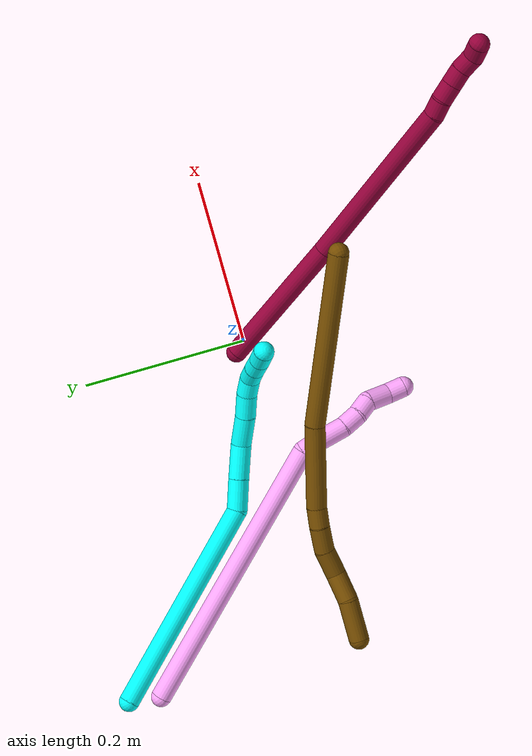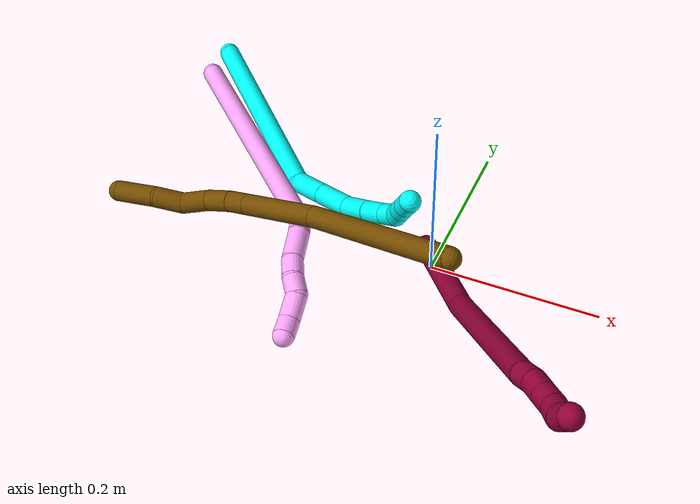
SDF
<sdf version="1.7">
 <world name="default">
  <model name="photoneo_s_sensor">
   <static>1</static>
   <pose>0 0 2 1.57079 1.57079 3.14159</pose>
   <link name="link">
    <inertial><mass>0.1</mass></inertial>
    <sensor name="sensor" type="depth">
     <update_rate>30</update_rate>
     <camera>
      <horizontal_fov>1.22</horizontal_fov>
      <image><width>1920</width><height>1200</height><format>B8G8R8</format></image>
      <clip><near>0.1</near><far>4</far></clip>
      <depth_camera><output>points</output></depth_camera>
     </camera>
     <plugin name="camera_plugin" filename="libgazebo_ros_depth_camera.so">
      <baseline>0.2</baseline>
      <alwaysOn>1</alwaysOn>
      <updateRate>0.0</updateRate>
      <cameraName>camera_ir</cameraName>
      <imageTopicName>/camera/color/image_raw</imageTopicName>
      <cameraInfoTopicName>/camera/color/camera_info</cameraInfoTopicName>
      <depthImageTopicName>/camera/depth/image_raw</depthImageTopicName>
      <depthImageCameraInfoTopicName>/camera/depth/camera_info</depthImageCameraInfoTopicName>
      <pointCloudTopicName>/camera/depth/points</pointCloudTopicName>
      <frameName>fr_optical</frameName>
      <pointCloudCutoff>0.1</pointCloudCutoff>
      <pointCloudCutoffMax>2.0</pointCloudCutoffMax>
      <distortionK1>0</distortionK1>
      <distortionK2>0</distortionK2>
      <distortionK3>0</distortionK3>
      <distortionT1>0</distortionT1>
      <distortionT2>0</distortionT2>
      <CxPrime>0</CxPrime>
      <Cx>0</Cx>
      <Cy>0</Cy>
      <focalLength>0</focalLength>
      <hackBaseline>0</hackBaseline>
     </plugin>
    </sensor>
   </link>
  </model>
  <model name="bin">
   <static>1</static>
   <link name="bottom">
    <collision name="collision-bottom">
     <pose>0 0 -0.01 0 -0 0</pose>
     <geometry><box><size>0.8 0.6 0.02</size></box></geometry>
     <surface>
      <friction><ode><mu>100</mu><mu2>100</mu2></ode></friction>
      <contact><collide_bitmask>65535</collide_bitmask></contact>
     </surface>
    </collision>
   </link>
   <link name="west_wall">
    <collision name="collision-west_wall">
     <pose>-0.41 0 0.1 0 -0 0</pose>
     <geometry><box><size>0.02 0.6 0.2</size></box></geometry>
     <surface>
      <friction><ode><mu>100</mu><mu2>100</mu2></ode></friction>
      <contact><collide_bitmask>65535</collide_bitmask></contact>
     </surface>
    </collision>
   </link>
   <link name="east_wall">
    <collision name="collision-east_wall">
     <pose>0.41 0 0.1 0 -0 0</pose>
     <geometry><box><size>0.02 0.6 0.2</size></box></geometry>
     <surface>
      <friction><ode><mu>100</mu><mu2>100</mu2></ode></friction>
      <contact><collide_bitmask>65535</collide_bitmask></contact>
     </surface>
    </collision>
   </link>
   <link name="south_wall">
    <collision name="collision-south_wall">
     <pose>0 -0.31 0.1 0 -0 0</pose>
     <geometry><box><size>0.8 0.02 0.2</size></box></geometry>
     <surface>
      <friction><ode><mu>100</mu><mu2>100</mu2></ode></friction>
      <contact><collide_bitmask>65535</collide_bitmask></contact>
     </surface>
    </collision>
   </link>
   <link name="north_wall">
    <collision name="collision-north_wall">
     <pose>0 0.31 0.1 0 -0 0</pose>
     <geometry><box><size>0.8 0.02 0.2</size></box></geometry>
     <surface>
      <friction><ode><mu>100</mu><mu2>100</mu2></ode></friction>
      <contact><collide_bitmask>65535</collide_bitmask></contact>
     </surface>
    </collision>
   </link>
  </model>
  <model name="3">
   <static>0</static>
   <link name="3">
    <collision name="collision-cylinder-e_1_1_4">
     <pose>0.104567 -0.066204 -0.048378 2.20186 0.905792 1.52823</pose>
     <geometry><cylinder><radius>0.0125</radius><length>0.265764</length></cylinder></geometry>
     <surface>
      <friction><ode><mu>1.16</mu><mu2>1.16</mu2><slip1>0</slip1><slip2>0</slip2></ode></friction>
      <contact><ode><kp>1e+06</kp><kd>1</kd><max_vel>0</max_vel><min_depth>0.001</min_depth></ode></contact>
     </surface>
    </collision>
    <visual name="visual-cylinder-e_1_1_4">
     <pose>0.104567 -0.066204 -0.048378 2.20186 0.905792 1.52823</pose>
     <geometry><cylinder><radius>0.0125</radius><length>0.265764</length></cylinder></geometry>
     <material><ambient>0.003922 1 0.996078 1</ambient></material>
    </visual>
    <collision name="collision-cylinder-e_2_4_5">
     <pose>0.21804 -0.148694 -0.102629 1.91687 0.475158 0.663943</pose>
     <geometry><cylinder><radius>0.0125</radius><length>0.038938</length></cylinder></geometry>
     <surface>
      <friction><ode><mu>1.16</mu><mu2>1.16</mu2><slip1>0</slip1><slip2>0</slip2></ode></friction>
      <contact><ode><kp>1e+06</kp><kd>1</kd><max_vel>0</max_vel><min_depth>0.001</min_depth></ode></contact>
     </surface>
    </collision>
    <visual name="visual-cylinder-e_2_4_5">
     <pose>0.21804 -0.148694 -0.102629 1.91687 0.475158 0.663943</pose>
     <geometry><cylinder><radius>0.0125</radius><length>0.038938</length></cylinder></geometry>
     <material><ambient>0.003922 1 0.996078 1</ambient></material>
    </visual>
    <collision name="collision-cylinder-e_3_5_6">
     <pose>0.236718 -0.182719 -0.115673 1.95501 0.472171 0.68536</pose>
     <geometry><cylinder><radius>0.0125</radius><length>0.04297</length></cylinder></geometry>
     <surface>
      <friction><ode><mu>1.16</mu><mu2>1.16</mu2><slip1>0</slip1><slip2>0</slip2></ode></friction>
      <contact><ode><kp>1e+06</kp><kd>1</kd><max_vel>0</max_vel><min_depth>0.001</min_depth></ode></contact>
     </surface>
    </collision>
    <visual name="visual-cylinder-e_3_5_6">
     <pose>0.236718 -0.182719 -0.115673 1.95501 0.472171 0.68536</pose>
     <geometry><cylinder><radius>0.0125</radius><length>0.04297</length></cylinder></geometry>
     <material><ambient>0.003922 1 0.996078 1</ambient></material>
    </visual>
    <collision name="collision-cylinder-e_4_6_7">
     <pose>0.252327 -0.214367 -0.13483 2.28201 0.307791 0.652651</pose>
     <geometry><cylinder><radius>0.0125</radius><length>0.038532</length></cylinder></geometry>
     <surface>
      <friction><ode><mu>1.16</mu><mu2>1.16</mu2><slip1>0</slip1><slip2>0</slip2></ode></friction>
      <contact><ode><kp>1e+06</kp><kd>1</kd><max_vel>0</max_vel><min_depth>0.001</min_depth></ode></contact>
     </surface>
    </collision>
    <visual name="visual-cylinder-e_4_6_7">
     <pose>0.252327 -0.214367 -0.13483 2.28201 0.307791 0.652651</pose>
     <geometry><cylinder><radius>0.0125</radius><length>0.038532</length></cylinder></geometry>
     <material><ambient>0.003922 1 0.996078 1</ambient></material>
    </visual>
    <collision name="collision-cylinder-e_5_7_8">
     <pose>0.262062 -0.239676 -0.155153 2.20235 0.269301 0.521715</pose>
     <geometry><cylinder><radius>0.0125</radius><length>0.029303</length></cylinder></geometry>
     <surface>
      <friction><ode><mu>1.16</mu><mu2>1.16</mu2><slip1>0</slip1><slip2>0</slip2></ode></friction>
      <contact><ode><kp>1e+06</kp><kd>1</kd><max_vel>0</max_vel><min_depth>0.001</min_depth></ode></contact>
     </surface>
    </collision>
    <visual name="visual-cylinder-e_5_7_8">
     <pose>0.262062 -0.239676 -0.155153 2.20235 0.269301 0.521715</pose>
     <geometry><cylinder><radius>0.0125</radius><length>0.029303</length></cylinder></geometry>
     <material><ambient>0.003922 1 0.996078 1</ambient></material>
    </visual>
    <collision name="collision-cylinder-e_6_8_9">
     <pose>0.268983 -0.258554 -0.171486 2.38949 0.269456 0.661391</pose>
     <geometry><cylinder><radius>0.0125</radius><length>0.022715</length></cylinder></geometry>
     <surface>
      <friction><ode><mu>1.16</mu><mu2>1.16</mu2><slip1>0</slip1><slip2>0</slip2></ode></friction>
      <contact><ode><kp>1e+06</kp><kd>1</kd><max_vel>0</max_vel><min_depth>0.001</min_depth></ode></contact>
     </surface>
    </collision>
    <visual name="visual-cylinder-e_6_8_9">
     <pose>0.268983 -0.258554 -0.171486 2.38949 0.269456 0.661391</pose>
     <geometry><cylinder><radius>0.0125</radius><length>0.022715</length></cylinder></geometry>
     <material><ambient>0.003922 1 0.996078 1</ambient></material>
    </visual>
    <collision name="collision-cylinder-e_7_9_10">
     <pose>0.272116 -0.269798 -0.189516 2.78263 0.010213 0.056276</pose>
     <geometry><cylinder><radius>0.0125</radius><length>0.021438</length></cylinder></geometry>
     <surface>
      <friction><ode><mu>1.16</mu><mu2>1.16</mu2><slip1>0</slip1><slip2>0</slip2></ode></friction>
      <contact><ode><kp>1e+06</kp><kd>1</kd><max_vel>0</max_vel><min_depth>0.001</min_depth></ode></contact>
     </surface>
    </collision>
    <visual name="visual-cylinder-e_7_9_10">
     <pose>0.272116 -0.269798 -0.189516 2.78263 0.010213 0.056276</pose>
     <geometry><cylinder><radius>0.0125</radius><length>0.021438</length></cylinder></geometry>
     <material><ambient>0.003922 1 0.996078 1</ambient></material>
    </visual>
    <collision name="collision-cylinder-e_8_10_11">
     <pose>0.272663 -0.276886 -0.209085 2.80631 0.04332 0.254633</pose>
     <geometry><cylinder><radius>0.0125</radius><length>0.02021</length></cylinder></geometry>
     <surface>
      <friction><ode><mu>1.16</mu><mu2>1.16</mu2><slip1>0</slip1><slip2>0</slip2></ode></friction>
      <contact><ode><kp>1e+06</kp><kd>1</kd><max_vel>0</max_vel><min_depth>0.001</min_depth></ode></contact>
     </surface>
    </collision>
    <visual name="visual-cylinder-e_8_10_11">
     <pose>0.272663 -0.276886 -0.209085 2.80631 0.04332 0.254633</pose>
     <geometry><cylinder><radius>0.0125</radius><length>0.02021</length></cylinder></geometry>
     <material><ambient>0.003922 1 0.996078 1</ambient></material>
    </visual>
    <collision name="collision-cylinder-e_9_11_2">
     <pose>0.273292 -0.283927 -0.227969 2.76302 0.01905 0.099359</pose>
     <geometry><cylinder><radius>0.0125</radius><length>0.020131</length></cylinder></geometry>
     <surface>
      <friction><ode><mu>1.16</mu><mu2>1.16</mu2><slip1>0</slip1><slip2>0</slip2></ode></friction>
      <contact><ode><kp>1e+06</kp><kd>1</kd><max_vel>0</max_vel><min_depth>0.001</min_depth></ode></contact>
     </surface>
    </collision>
    <visual name="visual-cylinder-e_9_11_2">
     <pose>0.273292 -0.283927 -0.227969 2.76302 0.01905 0.099359</pose>
     <geometry><cylinder><radius>0.0125</radius><length>0.020131</length></cylinder></geometry>
     <material><ambient>0.003922 1 0.996078 1</ambient></material>
    </visual>
    <collision name="collision-sphere-2">
     <pose>0.273484 -0.287646 -0.23732 0 -0 0</pose>
     <geometry><sphere><radius>0.0125</radius></sphere></geometry>
     <surface>
      <friction><ode><mu>1.16</mu><mu2>1.16</mu2><slip1>0</slip1><slip2>0</slip2></ode></friction>
      <contact><ode><kp>1e+06</kp><kd>1</kd><max_vel>0</max_vel><min_depth>0.001</min_depth></ode></contact>
     </surface>
    </collision>
    <visual name="visual-sphere-2">
     <pose>0.273484 -0.287646 -0.23732 0 -0 0</pose>
     <geometry><sphere><radius>0.0125</radius></sphere></geometry>
     <material><ambient>0.003922 1 0.996078 1</ambient></material>
    </visual>
    <collision name="collision-sphere-11">
     <pose>0.273101 -0.280207 -0.218618 0 -0 0</pose>
     <geometry><sphere><radius>0.0125</radius></sphere></geometry>
     <surface>
      <friction><ode><mu>1.16</mu><mu2>1.16</mu2><slip1>0</slip1><slip2>0</slip2></ode></friction>
      <contact><ode><kp>1e+06</kp><kd>1</kd><max_vel>0</max_vel><min_depth>0.001</min_depth></ode></contact>
     </surface>
    </collision>
    <visual name="visual-sphere-11">
     <pose>0.273101 -0.280207 -0.218618 0 -0 0</pose>
     <geometry><sphere><radius>0.0125</radius></sphere></geometry>
     <material><ambient>0.003922 1 0.996078 1</ambient></material>
    </visual>
    <collision name="collision-sphere-10">
     <pose>0.272225 -0.273564 -0.199552 0 -0 0</pose>
     <geometry><sphere><radius>0.0125</radius></sphere></geometry>
     <surface>
      <friction><ode><mu>1.16</mu><mu2>1.16</mu2><slip1>0</slip1><slip2>0</slip2></ode></friction>
      <contact><ode><kp>1e+06</kp><kd>1</kd><max_vel>0</max_vel><min_depth>0.001</min_depth></ode></contact>
     </surface>
    </collision>
    <visual name="visual-sphere-10">
     <pose>0.272225 -0.273564 -0.199552 0 -0 0</pose>
     <geometry><sphere><radius>0.0125</radius></sphere></geometry>
     <material><ambient>0.003922 1 0.996078 1</ambient></material>
    </visual>
    <collision name="collision-sphere-9">
     <pose>0.272007 -0.266033 -0.179481 0 -0 0</pose>
     <geometry><sphere><radius>0.0125</radius></sphere></geometry>
     <surface>
      <friction><ode><mu>1.16</mu><mu2>1.16</mu2><slip1>0</slip1><slip2>0</slip2></ode></friction>
      <contact><ode><kp>1e+06</kp><kd>1</kd><max_vel>0</max_vel><min_depth>0.001</min_depth></ode></contact>
     </surface>
    </collision>
    <visual name="visual-sphere-9">
     <pose>0.272007 -0.266033 -0.179481 0 -0 0</pose>
     <geometry><sphere><radius>0.0125</radius></sphere></geometry>
     <material><ambient>0.003922 1 0.996078 1</ambient></material>
    </visual>
    <collision name="collision-sphere-4">
     <pose>0.209133 -0.132408 -0.096756 0 -0 0</pose>
     <geometry><sphere><radius>0.0125</radius></sphere></geometry>
     <surface>
      <friction><ode><mu>1.16</mu><mu2>1.16</mu2><slip1>0</slip1><slip2>0</slip2></ode></friction>
      <contact><ode><kp>1e+06</kp><kd>1</kd><max_vel>0</max_vel><min_depth>0.001</min_depth></ode></contact>
     </surface>
    </collision>
    <visual name="visual-sphere-4">
     <pose>0.209133 -0.132408 -0.096756 0 -0 0</pose>
     <geometry><sphere><radius>0.0125</radius></sphere></geometry>
     <material><ambient>0.003922 1 0.996078 1</ambient></material>
    </visual>
    <collision name="collision-sphere-1">
     <geometry><sphere><radius>0.0125</radius></sphere></geometry>
     <surface>
      <friction><ode><mu>1.16</mu><mu2>1.16</mu2><slip1>0</slip1><slip2>0</slip2></ode></friction>
      <contact><ode><kp>1e+06</kp><kd>1</kd><max_vel>0</max_vel><min_depth>0.001</min_depth></ode></contact>
     </surface>
    </collision>
    <visual name="visual-sphere-1">
     <geometry><sphere><radius>0.0125</radius></sphere></geometry>
     <material><ambient>0.003922 1 0.996078 1</ambient></material>
    </visual>
    <collision name="collision-sphere-8">
     <pose>0.26596 -0.251075 -0.163492 0 -0 0</pose>
     <geometry><sphere><radius>0.0125</radius></sphere></geometry>
     <surface>
      <friction><ode><mu>1.16</mu><mu2>1.16</mu2><slip1>0</slip1><slip2>0</slip2></ode></friction>
      <contact><ode><kp>1e+06</kp><kd>1</kd><max_vel>0</max_vel><min_depth>0.001</min_depth></ode></contact>
     </surface>
    </collision>
    <visual name="visual-sphere-8">
     <pose>0.26596 -0.251075 -0.163492 0 -0 0</pose>
     <geometry><sphere><radius>0.0125</radius></sphere></geometry>
     <material><ambient>0.003922 1 0.996078 1</ambient></material>
    </visual>
    <collision name="collision-sphere-5">
     <pose>0.226947 -0.16498 -0.108501 0 -0 0</pose>
     <geometry><sphere><radius>0.0125</radius></sphere></geometry>
     <surface>
      <friction><ode><mu>1.16</mu><mu2>1.16</mu2><slip1>0</slip1><slip2>0</slip2></ode></friction>
      <contact><ode><kp>1e+06</kp><kd>1</kd><max_vel>0</max_vel><min_depth>0.001</min_depth></ode></contact>
     </surface>
    </collision>
    <visual name="visual-sphere-5">
     <pose>0.226947 -0.16498 -0.108501 0 -0 0</pose>
     <geometry><sphere><radius>0.0125</radius></sphere></geometry>
     <material><ambient>0.003922 1 0.996078 1</ambient></material>
    </visual>
    <collision name="collision-sphere-6">
     <pose>0.24649 -0.200458 -0.122845 0 -0 0</pose>
     <geometry><sphere><radius>0.0125</radius></sphere></geometry>
     <surface>
      <friction><ode><mu>1.16</mu><mu2>1.16</mu2><slip1>0</slip1><slip2>0</slip2></ode></friction>
      <contact><ode><kp>1e+06</kp><kd>1</kd><max_vel>0</max_vel><min_depth>0.001</min_depth></ode></contact>
     </surface>
    </collision>
    <visual name="visual-sphere-6">
     <pose>0.24649 -0.200458 -0.122845 0 -0 0</pose>
     <geometry><sphere><radius>0.0125</radius></sphere></geometry>
     <material><ambient>0.003922 1 0.996078 1</ambient></material>
    </visual>
    <collision name="collision-sphere-7">
     <pose>0.258163 -0.228276 -0.146815 0 -0 0</pose>
     <geometry><sphere><radius>0.0125</radius></sphere></geometry>
     <surface>
      <friction><ode><mu>1.16</mu><mu2>1.16</mu2><slip1>0</slip1><slip2>0</slip2></ode></friction>
      <contact><ode><kp>1e+06</kp><kd>1</kd><max_vel>0</max_vel><min_depth>0.001</min_depth></ode></contact>
     </surface>
    </collision>
    <visual name="visual-sphere-7">
     <pose>0.258163 -0.228276 -0.146815 0 -0 0</pose>
     <geometry><sphere><radius>0.0125</radius></sphere></geometry>
     <material><ambient>0.003922 1 0.996078 1</ambient></material>
    </visual>
    <inertial>
     <pose>0.173618 -0.138975 -0.096677 0 -0 0</pose>
     <mass>0.5</mass>
     <inertia>
      <ixx>0.001072</ixx>
      <ixy>0</ixy>
      <ixz>0</ixz>
      <iyy>0.001914</iyy>
      <iyz>0</iyz>
      <izz>-0.000461</izz>
     </inertia>
    </inertial>
   </link>
   <pose>-0.38265 0.253154 0.020432 -3.06373 0.510619 -1.27955</pose>
  </model>
  <model name="4">
   <static>0</static>
   <link name="4">
    <collision name="collision-cylinder-e_1_1_4">
     <pose>-0.045595 -0.095948 -0.136891 2.53026 -0.266271 -0.80275</pose>
     <geometry><cylinder><radius>0.0125</radius><length>0.346548</length></cylinder></geometry>
     <surface>
      <friction><ode><mu>1.16</mu><mu2>1.16</mu2><slip1>0</slip1><slip2>0</slip2></ode></friction>
      <contact><ode><kp>1e+06</kp><kd>1</kd><max_vel>0</max_vel><min_depth>0.001</min_depth></ode></contact>
     </surface>
    </collision>
    <visual name="visual-cylinder-e_1_1_4">
     <pose>-0.045595 -0.095948 -0.136891 2.53026 -0.266271 -0.80275</pose>
     <geometry><cylinder><radius>0.0125</radius><length>0.346548</length></cylinder></geometry>
     <material><ambient>1 0.65098 0.996078 1</ambient></material>
    </visual>
    <collision name="collision-cylinder-e_2_4_5">
     <pose>-0.089409 -0.196949 -0.282239 2.6031 0.178798 0.628167</pose>
     <geometry><cylinder><radius>0.0125</radius><length>0.020023</length></cylinder></geometry>
     <surface>
      <friction><ode><mu>1.16</mu><mu2>1.16</mu2><slip1>0</slip1><slip2>0</slip2></ode></friction>
      <contact><ode><kp>1e+06</kp><kd>1</kd><max_vel>0</max_vel><min_depth>0.001</min_depth></ode></contact>
     </surface>
    </collision>
    <visual name="visual-cylinder-e_2_4_5">
     <pose>-0.089409 -0.196949 -0.282239 2.6031 0.178798 0.628167</pose>
     <geometry><cylinder><radius>0.0125</radius><length>0.020023</length></cylinder></geometry>
     <material><ambient>1 0.65098 0.996078 1</ambient></material>
    </visual>
    <collision name="collision-cylinder-e_3_5_6">
     <pose>-0.081694 -0.213809 -0.304206 2.42333 0.319396 0.810584</pose>
     <geometry><cylinder><radius>0.0125</radius><length>0.037796</length></cylinder></geometry>
     <surface>
      <friction><ode><mu>1.16</mu><mu2>1.16</mu2><slip1>0</slip1><slip2>0</slip2></ode></friction>
      <contact><ode><kp>1e+06</kp><kd>1</kd><max_vel>0</max_vel><min_depth>0.001</min_depth></ode></contact>
     </surface>
    </collision>
    <visual name="visual-cylinder-e_3_5_6">
     <pose>-0.081694 -0.213809 -0.304206 2.42333 0.319396 0.810584</pose>
     <geometry><cylinder><radius>0.0125</radius><length>0.037796</length></cylinder></geometry>
     <material><ambient>1 0.65098 0.996078 1</ambient></material>
    </visual>
    <collision name="collision-cylinder-e_4_6_7">
     <pose>-0.074217 -0.233796 -0.325353 2.32194 0.137072 0.313429</pose>
     <geometry><cylinder><radius>0.0125</radius><length>0.022593</length></cylinder></geometry>
     <surface>
      <friction><ode><mu>1.16</mu><mu2>1.16</mu2><slip1>0</slip1><slip2>0</slip2></ode></friction>
      <contact><ode><kp>1e+06</kp><kd>1</kd><max_vel>0</max_vel><min_depth>0.001</min_depth></ode></contact>
     </surface>
    </collision>
    <visual name="visual-cylinder-e_4_6_7">
     <pose>-0.074217 -0.233796 -0.325353 2.32194 0.137072 0.313429</pose>
     <geometry><cylinder><radius>0.0125</radius><length>0.022593</length></cylinder></geometry>
     <material><ambient>1 0.65098 0.996078 1</ambient></material>
    </visual>
    <collision name="collision-cylinder-e_5_7_8">
     <pose>-0.072689 -0.251372 -0.338393 2.0926 -0.001483 -0.002563</pose>
     <geometry><cylinder><radius>0.0125</radius><length>0.021678</length></cylinder></geometry>
     <surface>
      <friction><ode><mu>1.16</mu><mu2>1.16</mu2><slip1>0</slip1><slip2>0</slip2></ode></friction>
      <contact><ode><kp>1e+06</kp><kd>1</kd><max_vel>0</max_vel><min_depth>0.001</min_depth></ode></contact>
     </surface>
    </collision>
    <visual name="visual-cylinder-e_5_7_8">
     <pose>-0.072689 -0.251372 -0.338393 2.0926 -0.001483 -0.002563</pose>
     <geometry><cylinder><radius>0.0125</radius><length>0.021678</length></cylinder></geometry>
     <material><ambient>1 0.65098 0.996078 1</ambient></material>
    </visual>
    <collision name="collision-cylinder-e_6_8_9">
     <pose>-0.065455 -0.2722 -0.34994 2.06394 0.509429 0.821499</pose>
     <geometry><cylinder><radius>0.0125</radius><length>0.029732</length></cylinder></geometry>
     <surface>
      <friction><ode><mu>1.16</mu><mu2>1.16</mu2><slip1>0</slip1><slip2>0</slip2></ode></friction>
      <contact><ode><kp>1e+06</kp><kd>1</kd><max_vel>0</max_vel><min_depth>0.001</min_depth></ode></contact>
     </surface>
    </collision>
    <visual name="visual-cylinder-e_6_8_9">
     <pose>-0.065455 -0.2722 -0.34994 2.06394 0.509429 0.821499</pose>
     <geometry><cylinder><radius>0.0125</radius><length>0.029732</length></cylinder></geometry>
     <material><ambient>1 0.65098 0.996078 1</ambient></material>
    </visual>
    <collision name="collision-cylinder-e_7_9_2">
     <pose>-0.053908 -0.289976 -0.363715 2.44801 0.408675 1.04128</pose>
     <geometry><cylinder><radius>0.0125</radius><length>0.021629</length></cylinder></geometry>
     <surface>
      <friction><ode><mu>1.16</mu><mu2>1.16</mu2><slip1>0</slip1><slip2>0</slip2></ode></friction>
      <contact><ode><kp>1e+06</kp><kd>1</kd><max_vel>0</max_vel><min_depth>0.001</min_depth></ode></contact>
     </surface>
    </collision>
    <visual name="visual-cylinder-e_7_9_2">
     <pose>-0.053908 -0.289976 -0.363715 2.44801 0.408675 1.04128</pose>
     <geometry><cylinder><radius>0.0125</radius><length>0.021629</length></cylinder></geometry>
     <material><ambient>1 0.65098 0.996078 1</ambient></material>
    </visual>
    <collision name="collision-sphere-2">
     <pose>-0.04961 -0.296321 -0.371346 0 -0 0</pose>
     <geometry><sphere><radius>0.0125</radius></sphere></geometry>
     <surface>
      <friction><ode><mu>1.16</mu><mu2>1.16</mu2><slip1>0</slip1><slip2>0</slip2></ode></friction>
      <contact><ode><kp>1e+06</kp><kd>1</kd><max_vel>0</max_vel><min_depth>0.001</min_depth></ode></contact>
     </surface>
    </collision>
    <visual name="visual-sphere-2">
     <pose>-0.04961 -0.296321 -0.371346 0 -0 0</pose>
     <geometry><sphere><radius>0.0125</radius></sphere></geometry>
     <material><ambient>1 0.65098 0.996078 1</ambient></material>
    </visual>
    <collision name="collision-sphere-9">
     <pose>-0.058206 -0.283632 -0.356084 0 -0 0</pose>
     <geometry><sphere><radius>0.0125</radius></sphere></geometry>
     <surface>
      <friction><ode><mu>1.16</mu><mu2>1.16</mu2><slip1>0</slip1><slip2>0</slip2></ode></friction>
      <contact><ode><kp>1e+06</kp><kd>1</kd><max_vel>0</max_vel><min_depth>0.001</min_depth></ode></contact>
     </surface>
    </collision>
    <visual name="visual-sphere-9">
     <pose>-0.058206 -0.283632 -0.356084 0 -0 0</pose>
     <geometry><sphere><radius>0.0125</radius></sphere></geometry>
     <material><ambient>1 0.65098 0.996078 1</ambient></material>
    </visual>
    <collision name="collision-sphere-4">
     <pose>-0.091189 -0.191896 -0.273781 0 -0 0</pose>
     <geometry><sphere><radius>0.0125</radius></sphere></geometry>
     <surface>
      <friction><ode><mu>1.16</mu><mu2>1.16</mu2><slip1>0</slip1><slip2>0</slip2></ode></friction>
      <contact><ode><kp>1e+06</kp><kd>1</kd><max_vel>0</max_vel><min_depth>0.001</min_depth></ode></contact>
     </surface>
    </collision>
    <visual name="visual-sphere-4">
     <pose>-0.091189 -0.191896 -0.273781 0 -0 0</pose>
     <geometry><sphere><radius>0.0125</radius></sphere></geometry>
     <material><ambient>1 0.65098 0.996078 1</ambient></material>
    </visual>
    <collision name="collision-sphere-1">
     <geometry><sphere><radius>0.0125</radius></sphere></geometry>
     <surface>
      <friction><ode><mu>1.16</mu><mu2>1.16</mu2><slip1>0</slip1><slip2>0</slip2></ode></friction>
      <contact><ode><kp>1e+06</kp><kd>1</kd><max_vel>0</max_vel><min_depth>0.001</min_depth></ode></contact>
     </surface>
    </collision>
    <visual name="visual-sphere-1">
     <geometry><sphere><radius>0.0125</radius></sphere></geometry>
     <material><ambient>1 0.65098 0.996078 1</ambient></material>
    </visual>
    <collision name="collision-sphere-8">
     <pose>-0.072705 -0.260768 -0.343796 0 -0 0</pose>
     <geometry><sphere><radius>0.0125</radius></sphere></geometry>
     <surface>
      <friction><ode><mu>1.16</mu><mu2>1.16</mu2><slip1>0</slip1><slip2>0</slip2></ode></friction>
      <contact><ode><kp>1e+06</kp><kd>1</kd><max_vel>0</max_vel><min_depth>0.001</min_depth></ode></contact>
     </surface>
    </collision>
    <visual name="visual-sphere-8">
     <pose>-0.072705 -0.260768 -0.343796 0 -0 0</pose>
     <geometry><sphere><radius>0.0125</radius></sphere></geometry>
     <material><ambient>1 0.65098 0.996078 1</ambient></material>
    </visual>
    <collision name="collision-sphere-5">
     <pose>-0.087628 -0.202001 -0.290697 0 -0 0</pose>
     <geometry><sphere><radius>0.0125</radius></sphere></geometry>
     <surface>
      <friction><ode><mu>1.16</mu><mu2>1.16</mu2><slip1>0</slip1><slip2>0</slip2></ode></friction>
      <contact><ode><kp>1e+06</kp><kd>1</kd><max_vel>0</max_vel><min_depth>0.001</min_depth></ode></contact>
     </surface>
    </collision>
    <visual name="visual-sphere-5">
     <pose>-0.087628 -0.202001 -0.290697 0 -0 0</pose>
     <geometry><sphere><radius>0.0125</radius></sphere></geometry>
     <material><ambient>1 0.65098 0.996078 1</ambient></material>
    </visual>
    <collision name="collision-sphere-6">
     <pose>-0.07576 -0.225616 -0.317716 0 -0 0</pose>
     <geometry><sphere><radius>0.0125</radius></sphere></geometry>
     <surface>
      <friction><ode><mu>1.16</mu><mu2>1.16</mu2><slip1>0</slip1><slip2>0</slip2></ode></friction>
      <contact><ode><kp>1e+06</kp><kd>1</kd><max_vel>0</max_vel><min_depth>0.001</min_depth></ode></contact>
     </surface>
    </collision>
    <visual name="visual-sphere-6">
     <pose>-0.07576 -0.225616 -0.317716 0 -0 0</pose>
     <geometry><sphere><radius>0.0125</radius></sphere></geometry>
     <material><ambient>1 0.65098 0.996078 1</ambient></material>
    </visual>
    <collision name="collision-sphere-7">
     <pose>-0.072673 -0.241975 -0.332991 0 -0 0</pose>
     <geometry><sphere><radius>0.0125</radius></sphere></geometry>
     <surface>
      <friction><ode><mu>1.16</mu><mu2>1.16</mu2><slip1>0</slip1><slip2>0</slip2></ode></friction>
      <contact><ode><kp>1e+06</kp><kd>1</kd><max_vel>0</max_vel><min_depth>0.001</min_depth></ode></contact>
     </surface>
    </collision>
    <visual name="visual-sphere-7">
     <pose>-0.072673 -0.241975 -0.332991 0 -0 0</pose>
     <geometry><sphere><radius>0.0125</radius></sphere></geometry>
     <material><ambient>1 0.65098 0.996078 1</ambient></material>
    </visual>
    <inertial>
     <pose>-0.054087 -0.140743 -0.195092 0 -0 0</pose>
     <mass>0.5</mass>
     <inertia>
      <ixx>-6.6e-05</ixx>
      <ixy>0</ixy>
      <ixz>0</ixz>
      <iyy>-0.004038</iyy>
      <iyz>0</iyz>
      <izz>0.002821</izz>
     </inertia>
    </inertial>
   </link>
   <pose>-0.388461 0.214713 0.011994 2.21616 0.26979 -2.61796</pose>
  </model>
  <model name="8">
   <static>0</static>
   <link name="8">
    <collision name="collision-cylinder-e_1_1_4">
     <pose>0.005324 -0.007627 0.085818 0.088642 0.061712 0.002738</pose>
     <geometry><cylinder><radius>0.0125</radius><length>0.172642</length></cylinder></geometry>
     <surface>
      <friction><ode><mu>1.16</mu><mu2>1.16</mu2><slip1>0</slip1><slip2>0</slip2></ode></friction>
      <contact><ode><kp>1e+06</kp><kd>1</kd><max_vel>0</max_vel><min_depth>0.001</min_depth></ode></contact>
     </surface>
    </collision>
    <visual name="visual-cylinder-e_1_1_4">
     <pose>0.005324 -0.007627 0.085818 0.088642 0.061712 0.002738</pose>
     <geometry><cylinder><radius>0.0125</radius><length>0.172642</length></cylinder></geometry>
     <material><ambient>0.584314 0 0.227451 1</ambient></material>
    </visual>
    <collision name="collision-cylinder-e_2_4_5">
     <pose>0.006032 -0.035073 0.282001 0.17768 -0.041139 -0.003665</pose>
     <geometry><cylinder><radius>0.0125</radius><length>0.224449</length></cylinder></geometry>
     <surface>
      <friction><ode><mu>1.16</mu><mu2>1.16</mu2><slip1>0</slip1><slip2>0</slip2></ode></friction>
      <contact><ode><kp>1e+06</kp><kd>1</kd><max_vel>0</max_vel><min_depth>0.001</min_depth></ode></contact>
     </surface>
    </collision>
    <visual name="visual-cylinder-e_2_4_5">
     <pose>0.006032 -0.035073 0.282001 0.17768 -0.041139 -0.003665</pose>
     <geometry><cylinder><radius>0.0125</radius><length>0.224449</length></cylinder></geometry>
     <material><ambient>0.584314 0 0.227451 1</ambient></material>
    </visual>
    <collision name="collision-cylinder-e_3_5_6">
     <pose>-0.000252 -0.054979 0.402571 0.008562 -0.162 -0.000695</pose>
     <geometry><cylinder><radius>0.0125</radius><length>0.020683</length></cylinder></geometry>
     <surface>
      <friction><ode><mu>1.16</mu><mu2>1.16</mu2><slip1>0</slip1><slip2>0</slip2></ode></friction>
      <contact><ode><kp>1e+06</kp><kd>1</kd><max_vel>0</max_vel><min_depth>0.001</min_depth></ode></contact>
     </surface>
    </collision>
    <visual name="visual-cylinder-e_3_5_6">
     <pose>-0.000252 -0.054979 0.402571 0.008562 -0.162 -0.000695</pose>
     <geometry><cylinder><radius>0.0125</radius><length>0.020683</length></cylinder></geometry>
     <material><ambient>0.584314 0 0.227451 1</ambient></material>
    </visual>
    <collision name="collision-cylinder-e_4_6_7">
     <pose>-0.001661 -0.054192 0.423409 -0.082062 0.024268 -0.000996</pose>
     <geometry><cylinder><radius>0.0125</radius><length>0.021343</length></cylinder></geometry>
     <surface>
      <friction><ode><mu>1.16</mu><mu2>1.16</mu2><slip1>0</slip1><slip2>0</slip2></ode></friction>
      <contact><ode><kp>1e+06</kp><kd>1</kd><max_vel>0</max_vel><min_depth>0.001</min_depth></ode></contact>
     </surface>
    </collision>
    <visual name="visual-cylinder-e_4_6_7">
     <pose>-0.001661 -0.054192 0.423409 -0.082062 0.024268 -0.000996</pose>
     <geometry><cylinder><radius>0.0125</radius><length>0.021343</length></cylinder></geometry>
     <material><ambient>0.584314 0 0.227451 1</ambient></material>
    </visual>
    <collision name="collision-cylinder-e_5_7_8">
     <pose>-0.001357 -0.052754 0.444053 -0.056201 0.00447 -0.000126</pose>
     <geometry><cylinder><radius>0.0125</radius><length>0.020055</length></cylinder></geometry>
     <surface>
      <friction><ode><mu>1.16</mu><mu2>1.16</mu2><slip1>0</slip1><slip2>0</slip2></ode></friction>
      <contact><ode><kp>1e+06</kp><kd>1</kd><max_vel>0</max_vel><min_depth>0.001</min_depth></ode></contact>
     </surface>
    </collision>
    <visual name="visual-cylinder-e_5_7_8">
     <pose>-0.001357 -0.052754 0.444053 -0.056201 0.00447 -0.000126</pose>
     <geometry><cylinder><radius>0.0125</radius><length>0.020055</length></cylinder></geometry>
     <material><ambient>0.584314 0 0.227451 1</ambient></material>
    </visual>
    <collision name="collision-cylinder-e_6_8_9">
     <pose>-0.000387 -0.053602 0.464271 0.137443 0.089595 0.006171</pose>
     <geometry><cylinder><radius>0.0125</radius><length>0.02069</length></cylinder></geometry>
     <surface>
      <friction><ode><mu>1.16</mu><mu2>1.16</mu2><slip1>0</slip1><slip2>0</slip2></ode></friction>
      <contact><ode><kp>1e+06</kp><kd>1</kd><max_vel>0</max_vel><min_depth>0.001</min_depth></ode></contact>
     </surface>
    </collision>
    <visual name="visual-cylinder-e_6_8_9">
     <pose>-0.000387 -0.053602 0.464271 0.137443 0.089595 0.006171</pose>
     <geometry><cylinder><radius>0.0125</radius><length>0.02069</length></cylinder></geometry>
     <material><ambient>0.584314 0 0.227451 1</ambient></material>
    </visual>
    <collision name="collision-cylinder-e_7_9_2">
     <pose>-0.003276 -0.058004 0.483303 0.326654 -0.388538 -0.064824</pose>
     <geometry><cylinder><radius>0.0125</radius><length>0.020138</length></cylinder></geometry>
     <surface>
      <friction><ode><mu>1.16</mu><mu2>1.16</mu2><slip1>0</slip1><slip2>0</slip2></ode></friction>
      <contact><ode><kp>1e+06</kp><kd>1</kd><max_vel>0</max_vel><min_depth>0.001</min_depth></ode></contact>
     </surface>
    </collision>
    <visual name="visual-cylinder-e_7_9_2">
     <pose>-0.003276 -0.058004 0.483303 0.326654 -0.388538 -0.064824</pose>
     <geometry><cylinder><radius>0.0125</radius><length>0.020138</length></cylinder></geometry>
     <material><ambient>0.584314 0 0.227451 1</ambient></material>
    </visual>
    <collision name="collision-sphere-2">
     <pose>-0.00709 -0.060994 0.492129 0 -0 0</pose>
     <geometry><sphere><radius>0.0125</radius></sphere></geometry>
     <surface>
      <friction><ode><mu>1.16</mu><mu2>1.16</mu2><slip1>0</slip1><slip2>0</slip2></ode></friction>
      <contact><ode><kp>1e+06</kp><kd>1</kd><max_vel>0</max_vel><min_depth>0.001</min_depth></ode></contact>
     </surface>
    </collision>
    <visual name="visual-sphere-2">
     <pose>-0.00709 -0.060994 0.492129 0 -0 0</pose>
     <geometry><sphere><radius>0.0125</radius></sphere></geometry>
     <material><ambient>0.584314 0 0.227451 1</ambient></material>
    </visual>
    <collision name="collision-sphere-9">
     <pose>0.000539 -0.055014 0.474477 0 -0 0</pose>
     <geometry><sphere><radius>0.0125</radius></sphere></geometry>
     <surface>
      <friction><ode><mu>1.16</mu><mu2>1.16</mu2><slip1>0</slip1><slip2>0</slip2></ode></friction>
      <contact><ode><kp>1e+06</kp><kd>1</kd><max_vel>0</max_vel><min_depth>0.001</min_depth></ode></contact>
     </surface>
    </collision>
    <visual name="visual-sphere-9">
     <pose>0.000539 -0.055014 0.474477 0 -0 0</pose>
     <geometry><sphere><radius>0.0125</radius></sphere></geometry>
     <material><ambient>0.584314 0 0.227451 1</ambient></material>
    </visual>
    <collision name="collision-sphere-4">
     <pose>0.010647 -0.015254 0.171637 0 -0 0</pose>
     <geometry><sphere><radius>0.0125</radius></sphere></geometry>
     <surface>
      <friction><ode><mu>1.16</mu><mu2>1.16</mu2><slip1>0</slip1><slip2>0</slip2></ode></friction>
      <contact><ode><kp>1e+06</kp><kd>1</kd><max_vel>0</max_vel><min_depth>0.001</min_depth></ode></contact>
     </surface>
    </collision>
    <visual name="visual-sphere-4">
     <pose>0.010647 -0.015254 0.171637 0 -0 0</pose>
     <geometry><sphere><radius>0.0125</radius></sphere></geometry>
     <material><ambient>0.584314 0 0.227451 1</ambient></material>
    </visual>
    <collision name="collision-sphere-1">
     <geometry><sphere><radius>0.0125</radius></sphere></geometry>
     <surface>
      <friction><ode><mu>1.16</mu><mu2>1.16</mu2><slip1>0</slip1><slip2>0</slip2></ode></friction>
      <contact><ode><kp>1e+06</kp><kd>1</kd><max_vel>0</max_vel><min_depth>0.001</min_depth></ode></contact>
     </surface>
    </collision>
    <visual name="visual-sphere-1">
     <geometry><sphere><radius>0.0125</radius></sphere></geometry>
     <material><ambient>0.584314 0 0.227451 1</ambient></material>
    </visual>
    <collision name="collision-sphere-8">
     <pose>-0.001312 -0.052191 0.454064 0 -0 0</pose>
     <geometry><sphere><radius>0.0125</radius></sphere></geometry>
     <surface>
      <friction><ode><mu>1.16</mu><mu2>1.16</mu2><slip1>0</slip1><slip2>0</slip2></ode></friction>
      <contact><ode><kp>1e+06</kp><kd>1</kd><max_vel>0</max_vel><min_depth>0.001</min_depth></ode></contact>
     </surface>
    </collision>
    <visual name="visual-sphere-8">
     <pose>-0.001312 -0.052191 0.454064 0 -0 0</pose>
     <geometry><sphere><radius>0.0125</radius></sphere></geometry>
     <material><ambient>0.584314 0 0.227451 1</ambient></material>
    </visual>
    <collision name="collision-sphere-5">
     <pose>0.001416 -0.054891 0.392365 0 -0 0</pose>
     <geometry><sphere><radius>0.0125</radius></sphere></geometry>
     <surface>
      <friction><ode><mu>1.16</mu><mu2>1.16</mu2><slip1>0</slip1><slip2>0</slip2></ode></friction>
      <contact><ode><kp>1e+06</kp><kd>1</kd><max_vel>0</max_vel><min_depth>0.001</min_depth></ode></contact>
     </surface>
    </collision>
    <visual name="visual-sphere-5">
     <pose>0.001416 -0.054891 0.392365 0 -0 0</pose>
     <geometry><sphere><radius>0.0125</radius></sphere></geometry>
     <material><ambient>0.584314 0 0.227451 1</ambient></material>
    </visual>
    <collision name="collision-sphere-6">
     <pose>-0.00192 -0.055066 0.412777 0 -0 0</pose>
     <geometry><sphere><radius>0.0125</radius></sphere></geometry>
     <surface>
      <friction><ode><mu>1.16</mu><mu2>1.16</mu2><slip1>0</slip1><slip2>0</slip2></ode></friction>
      <contact><ode><kp>1e+06</kp><kd>1</kd><max_vel>0</max_vel><min_depth>0.001</min_depth></ode></contact>
     </surface>
    </collision>
    <visual name="visual-sphere-6">
     <pose>-0.00192 -0.055066 0.412777 0 -0 0</pose>
     <geometry><sphere><radius>0.0125</radius></sphere></geometry>
     <material><ambient>0.584314 0 0.227451 1</ambient></material>
    </visual>
    <collision name="collision-sphere-7">
     <pose>-0.001402 -0.053317 0.434041 0 -0 0</pose>
     <geometry><sphere><radius>0.0125</radius></sphere></geometry>
     <surface>
      <friction><ode><mu>1.16</mu><mu2>1.16</mu2><slip1>0</slip1><slip2>0</slip2></ode></friction>
      <contact><ode><kp>1e+06</kp><kd>1</kd><max_vel>0</max_vel><min_depth>0.001</min_depth></ode></contact>
     </surface>
    </collision>
    <visual name="visual-sphere-7">
     <pose>-0.001402 -0.053317 0.434041 0 -0 0</pose>
     <geometry><sphere><radius>0.0125</radius></sphere></geometry>
     <material><ambient>0.584314 0 0.227451 1</ambient></material>
    </visual>
    <inertial>
     <pose>0.004262 -0.029635 0.247436 0 -0 0</pose>
     <mass>0.5</mass>
     <inertia><ixx>0.00139</ixx><ixy>0</ixy><ixz>0</ixz><iyy>0.00137</iyy><iyz>0</iyz><izz>0.000258</izz></inertia>
    </inertial>
   </link>
   <pose>-0.010939 0.01203 0.019842 -1.11814 0.602408 -2.18356</pose>
  </model>
  <model name="12">
   <static>0</static>
   <link name="12">
    <collision name="collision-cylinder-e_1_1_4">
     <pose>-0.079616 0.036864 -0.064174 -2.62017 -0.821883 2.04286</pose>
     <geometry><cylinder><radius>0.0125</radius><length>0.217402</length></cylinder></geometry>
     <surface>
      <friction><ode><mu>1.16</mu><mu2>1.16</mu2><slip1>0</slip1><slip2>0</slip2></ode></friction>
      <contact><ode><kp>1e+06</kp><kd>1</kd><max_vel>0</max_vel><min_depth>0.001</min_depth></ode></contact>
     </surface>
    </collision>
    <visual name="visual-cylinder-e_1_1_4">
     <pose>-0.079616 0.036864 -0.064174 -2.62017 -0.821883 2.04286</pose>
     <geometry><cylinder><radius>0.0125</radius><length>0.217402</length></cylinder></geometry>
     <material><ambient>0.466667 0.301961 0 1</ambient></material>
    </visual>
    <collision name="collision-cylinder-e_2_4_5">
     <pose>-0.192258 0.094685 -0.163947 -2.60954 -0.67442 1.82024</pose>
     <geometry><cylinder><radius>0.0125</radius><length>0.105779</length></cylinder></geometry>
     <surface>
      <friction><ode><mu>1.16</mu><mu2>1.16</mu2><slip1>0</slip1><slip2>0</slip2></ode></friction>
      <contact><ode><kp>1e+06</kp><kd>1</kd><max_vel>0</max_vel><min_depth>0.001</min_depth></ode></contact>
     </surface>
    </collision>
    <visual name="visual-cylinder-e_2_4_5">
     <pose>-0.192258 0.094685 -0.163947 -2.60954 -0.67442 1.82024</pose>
     <geometry><cylinder><radius>0.0125</radius><length>0.105779</length></cylinder></geometry>
     <material><ambient>0.466667 0.301961 0 1</ambient></material>
    </visual>
    <collision name="collision-cylinder-e_3_5_6">
     <pose>-0.231587 0.12026 -0.209189 -2.69496 -0.532705 1.75323</pose>
     <geometry><cylinder><radius>0.0125</radius><length>0.02482</length></cylinder></geometry>
     <surface>
      <friction><ode><mu>1.16</mu><mu2>1.16</mu2><slip1>0</slip1><slip2>0</slip2></ode></friction>
      <contact><ode><kp>1e+06</kp><kd>1</kd><max_vel>0</max_vel><min_depth>0.001</min_depth></ode></contact>
     </surface>
    </collision>
    <visual name="visual-cylinder-e_3_5_6">
     <pose>-0.231587 0.12026 -0.209189 -2.69496 -0.532705 1.75323</pose>
     <geometry><cylinder><radius>0.0125</radius><length>0.02482</length></cylinder></geometry>
     <material><ambient>0.466667 0.301961 0 1</ambient></material>
    </visual>
    <collision name="collision-cylinder-e_4_6_7">
     <pose>-0.245625 0.132401 -0.23042 -2.56581 -0.510313 1.44429</pose>
     <geometry><cylinder><radius>0.0125</radius><length>0.03167</length></cylinder></geometry>
     <surface>
      <friction><ode><mu>1.16</mu><mu2>1.16</mu2><slip1>0</slip1><slip2>0</slip2></ode></friction>
      <contact><ode><kp>1e+06</kp><kd>1</kd><max_vel>0</max_vel><min_depth>0.001</min_depth></ode></contact>
     </surface>
    </collision>
    <visual name="visual-cylinder-e_4_6_7">
     <pose>-0.245625 0.132401 -0.23042 -2.56581 -0.510313 1.44429</pose>
     <geometry><cylinder><radius>0.0125</radius><length>0.03167</length></cylinder></geometry>
     <material><ambient>0.466667 0.301961 0 1</ambient></material>
    </visual>
    <collision name="collision-cylinder-e_5_7_8">
     <pose>-0.258182 0.149654 -0.255286 -2.50914 -0.285023 0.826522</pose>
     <geometry><cylinder><radius>0.0125</radius><length>0.034302</length></cylinder></geometry>
     <surface>
      <friction><ode><mu>1.16</mu><mu2>1.16</mu2><slip1>0</slip1><slip2>0</slip2></ode></friction>
      <contact><ode><kp>1e+06</kp><kd>1</kd><max_vel>0</max_vel><min_depth>0.001</min_depth></ode></contact>
     </surface>
    </collision>
    <visual name="visual-cylinder-e_5_7_8">
     <pose>-0.258182 0.149654 -0.255286 -2.50914 -0.285023 0.826522</pose>
     <geometry><cylinder><radius>0.0125</radius><length>0.034302</length></cylinder></geometry>
     <material><ambient>0.466667 0.301961 0 1</ambient></material>
    </visual>
    <collision name="collision-cylinder-e_6_8_9">
     <pose>-0.265727 0.163552 -0.285532 -2.90069 -0.154551 1.13823</pose>
     <geometry><cylinder><radius>0.0125</radius><length>0.035372</length></cylinder></geometry>
     <surface>
      <friction><ode><mu>1.16</mu><mu2>1.16</mu2><slip1>0</slip1><slip2>0</slip2></ode></friction>
      <contact><ode><kp>1e+06</kp><kd>1</kd><max_vel>0</max_vel><min_depth>0.001</min_depth></ode></contact>
     </surface>
    </collision>
    <visual name="visual-cylinder-e_6_8_9">
     <pose>-0.265727 0.163552 -0.285532 -2.90069 -0.154551 1.13823</pose>
     <geometry><cylinder><radius>0.0125</radius><length>0.035372</length></cylinder></geometry>
     <material><ambient>0.466667 0.301961 0 1</ambient></material>
    </visual>
    <collision name="collision-cylinder-e_7_9_2">
     <pose>-0.278046 0.176855 -0.324089 -2.74133 -0.388592 1.54043</pose>
     <geometry><cylinder><radius>0.0125</radius><length>0.050655</length></cylinder></geometry>
     <surface>
      <friction><ode><mu>1.16</mu><mu2>1.16</mu2><slip1>0</slip1><slip2>0</slip2></ode></friction>
      <contact><ode><kp>1e+06</kp><kd>1</kd><max_vel>0</max_vel><min_depth>0.001</min_depth></ode></contact>
     </surface>
    </collision>
    <visual name="visual-cylinder-e_7_9_2">
     <pose>-0.278046 0.176855 -0.324089 -2.74133 -0.388592 1.54043</pose>
     <geometry><cylinder><radius>0.0125</radius><length>0.050655</length></cylinder></geometry>
     <material><ambient>0.466667 0.301961 0 1</ambient></material>
    </visual>
    <collision name="collision-sphere-2">
     <pose>-0.287642 0.185988 -0.345675 0 -0 0</pose>
     <geometry><sphere><radius>0.0125</radius></sphere></geometry>
     <surface>
      <friction><ode><mu>1.16</mu><mu2>1.16</mu2><slip1>0</slip1><slip2>0</slip2></ode></friction>
      <contact><ode><kp>1e+06</kp><kd>1</kd><max_vel>0</max_vel><min_depth>0.001</min_depth></ode></contact>
     </surface>
    </collision>
    <visual name="visual-sphere-2">
     <pose>-0.287642 0.185988 -0.345675 0 -0 0</pose>
     <geometry><sphere><radius>0.0125</radius></sphere></geometry>
     <material><ambient>0.466667 0.301961 0 1</ambient></material>
    </visual>
    <collision name="collision-sphere-9">
     <pose>-0.268449 0.167721 -0.302502 0 -0 0</pose>
     <geometry><sphere><radius>0.0125</radius></sphere></geometry>
     <surface>
      <friction><ode><mu>1.16</mu><mu2>1.16</mu2><slip1>0</slip1><slip2>0</slip2></ode></friction>
      <contact><ode><kp>1e+06</kp><kd>1</kd><max_vel>0</max_vel><min_depth>0.001</min_depth></ode></contact>
     </surface>
    </collision>
    <visual name="visual-sphere-9">
     <pose>-0.268449 0.167721 -0.302502 0 -0 0</pose>
     <geometry><sphere><radius>0.0125</radius></sphere></geometry>
     <material><ambient>0.466667 0.301961 0 1</ambient></material>
    </visual>
    <collision name="collision-sphere-4">
     <pose>-0.159232 0.073729 -0.128347 0 -0 0</pose>
     <geometry><sphere><radius>0.0125</radius></sphere></geometry>
     <surface>
      <friction><ode><mu>1.16</mu><mu2>1.16</mu2><slip1>0</slip1><slip2>0</slip2></ode></friction>
      <contact><ode><kp>1e+06</kp><kd>1</kd><max_vel>0</max_vel><min_depth>0.001</min_depth></ode></contact>
     </surface>
    </collision>
    <visual name="visual-sphere-4">
     <pose>-0.159232 0.073729 -0.128347 0 -0 0</pose>
     <geometry><sphere><radius>0.0125</radius></sphere></geometry>
     <material><ambient>0.466667 0.301961 0 1</ambient></material>
    </visual>
    <collision name="collision-sphere-1">
     <geometry><sphere><radius>0.0125</radius></sphere></geometry>
     <surface>
      <friction><ode><mu>1.16</mu><mu2>1.16</mu2><slip1>0</slip1><slip2>0</slip2></ode></friction>
      <contact><ode><kp>1e+06</kp><kd>1</kd><max_vel>0</max_vel><min_depth>0.001</min_depth></ode></contact>
     </surface>
    </collision>
    <visual name="visual-sphere-1">
     <geometry><sphere><radius>0.0125</radius></sphere></geometry>
     <material><ambient>0.466667 0.301961 0 1</ambient></material>
    </visual>
    <collision name="collision-sphere-8">
     <pose>-0.263004 0.159383 -0.268561 0 -0 0</pose>
     <geometry><sphere><radius>0.0125</radius></sphere></geometry>
     <surface>
      <friction><ode><mu>1.16</mu><mu2>1.16</mu2><slip1>0</slip1><slip2>0</slip2></ode></friction>
      <contact><ode><kp>1e+06</kp><kd>1</kd><max_vel>0</max_vel><min_depth>0.001</min_depth></ode></contact>
     </surface>
    </collision>
    <visual name="visual-sphere-8">
     <pose>-0.263004 0.159383 -0.268561 0 -0 0</pose>
     <geometry><sphere><radius>0.0125</radius></sphere></geometry>
     <material><ambient>0.466667 0.301961 0 1</ambient></material>
    </visual>
    <collision name="collision-sphere-5">
     <pose>-0.225285 0.115642 -0.199547 0 -0 0</pose>
     <geometry><sphere><radius>0.0125</radius></sphere></geometry>
     <surface>
      <friction><ode><mu>1.16</mu><mu2>1.16</mu2><slip1>0</slip1><slip2>0</slip2></ode></friction>
      <contact><ode><kp>1e+06</kp><kd>1</kd><max_vel>0</max_vel><min_depth>0.001</min_depth></ode></contact>
     </surface>
    </collision>
    <visual name="visual-sphere-5">
     <pose>-0.225285 0.115642 -0.199547 0 -0 0</pose>
     <geometry><sphere><radius>0.0125</radius></sphere></geometry>
     <material><ambient>0.466667 0.301961 0 1</ambient></material>
    </visual>
    <collision name="collision-sphere-6">
     <pose>-0.23789 0.124877 -0.218831 0 -0 0</pose>
     <geometry><sphere><radius>0.0125</radius></sphere></geometry>
     <surface>
      <friction><ode><mu>1.16</mu><mu2>1.16</mu2><slip1>0</slip1><slip2>0</slip2></ode></friction>
      <contact><ode><kp>1e+06</kp><kd>1</kd><max_vel>0</max_vel><min_depth>0.001</min_depth></ode></contact>
     </surface>
    </collision>
    <visual name="visual-sphere-6">
     <pose>-0.23789 0.124877 -0.218831 0 -0 0</pose>
     <geometry><sphere><radius>0.0125</radius></sphere></geometry>
     <material><ambient>0.466667 0.301961 0 1</ambient></material>
    </visual>
    <collision name="collision-sphere-7">
     <pose>-0.253359 0.139924 -0.24201 0 -0 0</pose>
     <geometry><sphere><radius>0.0125</radius></sphere></geometry>
     <surface>
      <friction><ode><mu>1.16</mu><mu2>1.16</mu2><slip1>0</slip1><slip2>0</slip2></ode></friction>
      <contact><ode><kp>1e+06</kp><kd>1</kd><max_vel>0</max_vel><min_depth>0.001</min_depth></ode></contact>
     </surface>
    </collision>
    <visual name="visual-sphere-7">
     <pose>-0.253359 0.139924 -0.24201 0 -0 0</pose>
     <geometry><sphere><radius>0.0125</radius></sphere></geometry>
     <material><ambient>0.466667 0.301961 0 1</ambient></material>
    </visual>
    <inertial>
     <pose>-0.167025 0.09017 -0.158113 0 -0 0</pose>
     <mass>0.5</mass>
     <inertia>
      <ixx>0.000323</ixx>
      <ixy>0</ixy>
      <ixz>0</ixz>
      <iyy>0.001316</iyy>
      <iyz>0</iyz>
      <izz>0.000335</izz>
     </inertia>
    </inertial>
   </link>
   <pose>0.064902 -0.13416 0.16356 -1.95408 -0.396858 -1.21889</pose>
  </model>
 </world>
</sdf>
